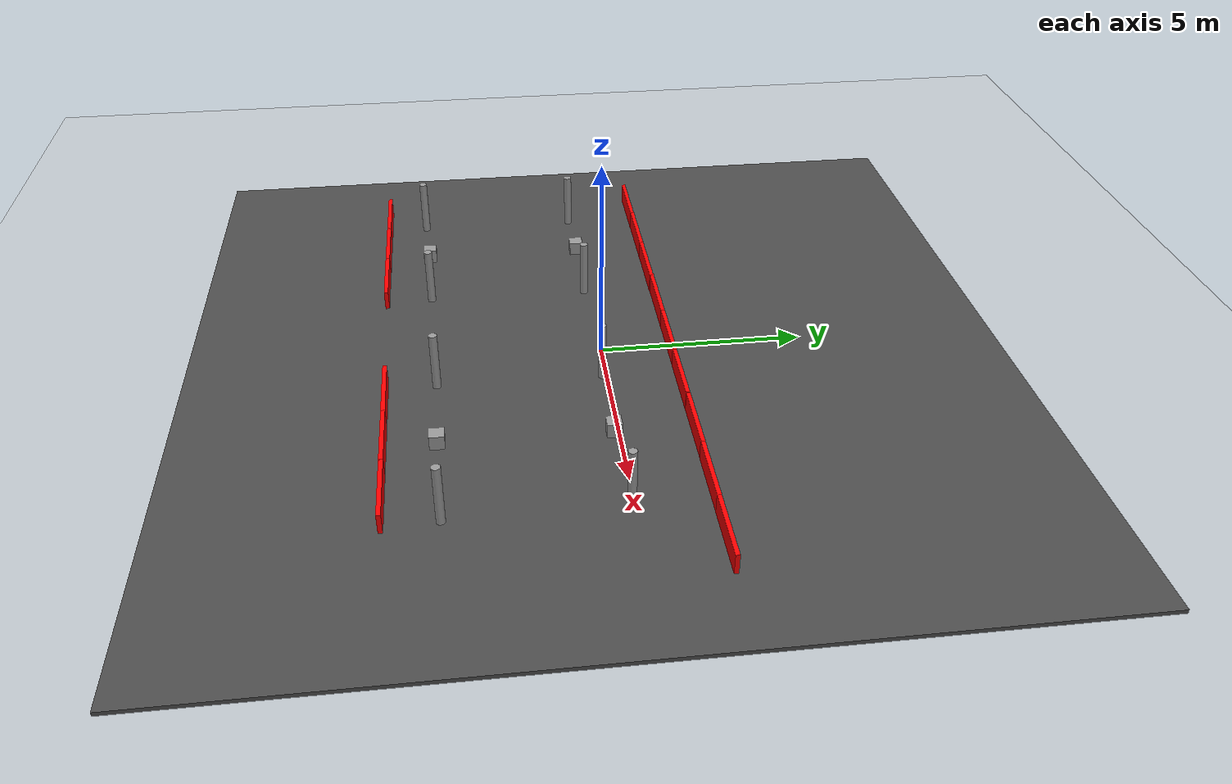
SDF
<sdf version="1.6">
 <world name="default">
  <light name="sun" type="directional">
   <pose>0 0 10 0 -0 0</pose>
   <diffuse>0.8 0.8 0.8 1</diffuse>
   <specular>0.2 0.2 0.2 1</specular>
   <attenuation>
    <range>1000</range>
    <constant>0.9</constant>
    <linear>0.01</linear>
    <quadratic>0.001</quadratic>
   </attenuation>
   <direction>-0.5 0.1 -0.9</direction>
  </light>
  <model name="ground_plane">
   <static>1</static>
   <link name="link">
    <collision name="collision">
     <geometry><plane><normal>0 0 1</normal><size>100 100</size></plane></geometry>
     <surface><friction><ode><mu>100</mu><mu2>50</mu2></ode></friction></surface>
    </collision>
    <visual name="visual">
     <cast_shadows>0</cast_shadows>
     <geometry><plane><normal>0 0 1</normal><size>100 100</size></plane></geometry>
     <material>
      <script><uri>file://media/materials/scripts/gazebo.material</uri><name>Gazebo/Grey</name></script>
     </material>
    </visual>
   </link>
  </model>
  <gravity>0 0 -9.8</gravity>
  <magnetic_field>6e-06 2.3e-05 -4.2e-05</magnetic_field>
  <atmosphere type="adiabatic"/>
  <physics name="default_physics" default="0" type="ode">
   <max_step_size>0.001</max_step_size>
   <real_time_factor>1</real_time_factor>
   <real_time_update_rate>1000</real_time_update_rate>
  </physics>
  <scene><ambient>0.4 0.4 0.4 1</ambient><background>0.7 0.7 0.7 1</background><shadows>1</shadows></scene>
  <audio><device>default</device></audio>
  <spherical_coordinates>
   <surface_model>EARTH_WGS84</surface_model>
   <latitude_deg>0</latitude_deg>
   <longitude_deg>0</longitude_deg>
   <elevation>0</elevation>
   <heading_deg>0</heading_deg>
  </spherical_coordinates>
  <model name="asphalt_plane">
   <static>1</static>
   <link name="link">
    <collision name="collision"><geometry><box><size>20 20 0.1</size></box></geometry></collision>
    <visual name="visual">
     <cast_shadows>0</cast_shadows>
     <geometry><box><size>20 20 0.1</size></box></geometry>
     <material>
      <script>
       <uri>model://asphalt_plane/materials/scripts</uri>
       <uri>model://asphalt_plane/materials/textures</uri>
       <name>vrc/asphalt</name>
      </script>
     </material>
    </visual>
    <velocity_decay><linear>0</linear><angular>0</angular></velocity_decay>
   </link>
   <pose>0.048269 -0.078348 0 0 -0 0</pose>
  </model>
  <gravity>0 0 -9.8</gravity>
  <magnetic_field>6e-06 2.3e-05 -4.2e-05</magnetic_field>
  <atmosphere type="adiabatic"/>
  <audio><device>default</device></audio>
  <spherical_coordinates>
   <surface_model>EARTH_WGS84</surface_model>
   <latitude_deg>0</latitude_deg>
   <longitude_deg>0</longitude_deg>
   <elevation>0</elevation>
   <heading_deg>0</heading_deg>
  </spherical_coordinates>
  <model name="circular_reflector">
   <static>1</static>
   <pose>5.90778 -4.03761 0 0 -0 0</pose>
   <link name="link">
    <inertial>
     <mass>1</mass>
     <inertia><ixx>0</ixx><ixy>0</ixy><ixz>0</ixz><iyy>0</iyy><iyz>0</iyz><izz>0</izz></inertia>
    </inertial>
    <collision name="collision">
     <laser_retro>1000</laser_retro>
     <geometry><cylinder><radius>0.05</radius><length>1</length></cylinder></geometry>
    </collision>
    <visual name="visual">
     <geometry><cylinder><radius>0.1</radius><length>3</length></cylinder></geometry>
     <material>
      <script><name>Gazebo/Grey</name><uri>file://media/materials/scripts/gazebo.material</uri></script>
      <ambient>1 1 1 1</ambient>
      <diffuse>1 1 1 1</diffuse>
      <specular>1 1 1 1</specular>
      <emissive>1 1 1 1</emissive>
     </material>
     <laser_retro>1000</laser_retro>
    </visual>
   </link>
  </model>
  <model name="circular_reflector_0">
   <static>1</static>
   <pose>5.87326 -0.076984 0 0 -0 0</pose>
   <link name="link">
    <inertial>
     <mass>1</mass>
     <inertia><ixx>0</ixx><ixy>0</ixy><ixz>0</ixz><iyy>0</iyy><iyz>0</iyz><izz>0</izz></inertia>
    </inertial>
    <collision name="collision">
     <laser_retro>1000</laser_retro>
     <geometry><cylinder><radius>0.05</radius><length>1</length></cylinder></geometry>
    </collision>
    <visual name="visual">
     <geometry><cylinder><radius>0.1</radius><length>3</length></cylinder></geometry>
     <material>
      <script><name>Gazebo/Grey</name><uri>file://media/materials/scripts/gazebo.material</uri></script>
      <ambient>1 1 1 1</ambient>
      <diffuse>1 1 1 1</diffuse>
      <specular>1 1 1 1</specular>
      <emissive>1 1 1 1</emissive>
     </material>
     <laser_retro>1000</laser_retro>
    </visual>
   </link>
  </model>
  <model name="circular_reflector_0_clone">
   <static>1</static>
   <pose>1.17274 -0.124319 0 0 -0 0</pose>
   <link name="link">
    <inertial>
     <mass>1</mass>
     <inertia><ixx>0</ixx><ixy>0</ixy><ixz>0</ixz><iyy>0</iyy><iyz>0</iyz><izz>0</izz></inertia>
    </inertial>
    <collision name="collision">
     <laser_retro>1000</laser_retro>
     <geometry><cylinder><radius>0.05</radius><length>1</length></cylinder></geometry>
    </collision>
    <visual name="visual">
     <geometry><cylinder><radius>0.1</radius><length>3</length></cylinder></geometry>
     <material>
      <script><name>Gazebo/Grey</name><uri>file://media/materials/scripts/gazebo.material</uri></script>
      <ambient>1 1 1 1</ambient>
      <diffuse>1 1 1 1</diffuse>
      <specular>1 1 1 1</specular>
      <emissive>1 1 1 1</emissive>
     </material>
     <laser_retro>1000</laser_retro>
    </visual>
   </link>
  </model>
  <model name="circular_reflector_0_clone_clone">
   <static>1</static>
   <pose>1.12879 -4.06871 0 0 -0 0</pose>
   <link name="link">
    <inertial>
     <mass>1</mass>
     <inertia><ixx>0</ixx><ixy>0</ixy><ixz>0</ixz><iyy>0</iyy><iyz>0</iyz><izz>0</izz></inertia>
    </inertial>
    <collision name="collision">
     <laser_retro>1000</laser_retro>
     <geometry><cylinder><radius>0.05</radius><length>1</length></cylinder></geometry>
    </collision>
    <visual name="visual">
     <geometry><cylinder><radius>0.1</radius><length>3</length></cylinder></geometry>
     <material>
      <script><name>Gazebo/Grey</name><uri>file://media/materials/scripts/gazebo.material</uri></script>
      <ambient>1 1 1 1</ambient>
      <diffuse>1 1 1 1</diffuse>
      <specular>1 1 1 1</specular>
      <emissive>1 1 1 1</emissive>
     </material>
     <laser_retro>1000</laser_retro>
    </visual>
   </link>
  </model>
  <model name="circular_reflector_0_clone_clone_0">
   <static>1</static>
   <pose>-2.75059 -0.124986 0 0 -0 0</pose>
   <link name="link">
    <inertial>
     <mass>1</mass>
     <inertia><ixx>0</ixx><ixy>0</ixy><ixz>0</ixz><iyy>0</iyy><iyz>0</iyz><izz>0</izz></inertia>
    </inertial>
    <collision name="collision">
     <laser_retro>1000</laser_retro>
     <geometry><cylinder><radius>0.05</radius><length>1</length></cylinder></geometry>
    </collision>
    <visual name="visual">
     <geometry><cylinder><radius>0.1</radius><length>3</length></cylinder></geometry>
     <material>
      <script><name>Gazebo/Grey</name><uri>file://media/materials/scripts/gazebo.material</uri></script>
      <ambient>1 1 1 1</ambient>
      <diffuse>1 1 1 1</diffuse>
      <specular>1 1 1 1</specular>
      <emissive>1 1 1 1</emissive>
     </material>
     <laser_retro>1000</laser_retro>
    </visual>
   </link>
  </model>
  <model name="circular_reflector_0_clone_clone_1">
   <static>1</static>
   <pose>-2.81115 -4.15818 0 0 -0 0</pose>
   <link name="link">
    <inertial>
     <mass>1</mass>
     <inertia><ixx>0</ixx><ixy>0</ixy><ixz>0</ixz><iyy>0</iyy><iyz>0</iyz><izz>0</izz></inertia>
    </inertial>
    <collision name="collision">
     <laser_retro>1000</laser_retro>
     <geometry><cylinder><radius>0.05</radius><length>1</length></cylinder></geometry>
    </collision>
    <visual name="visual">
     <geometry><cylinder><radius>0.1</radius><length>3</length></cylinder></geometry>
     <material>
      <script><name>Gazebo/Grey</name><uri>file://media/materials/scripts/gazebo.material</uri></script>
      <ambient>1 1 1 1</ambient>
      <diffuse>1 1 1 1</diffuse>
      <specular>1 1 1 1</specular>
      <emissive>1 1 1 1</emissive>
     </material>
     <laser_retro>1000</laser_retro>
    </visual>
   </link>
  </model>
  <model name="circular_reflector_0_clone_clone_2">
   <static>1</static>
   <pose>-6.70087 -0.164899 0 0 -0 0</pose>
   <link name="link">
    <inertial>
     <mass>1</mass>
     <inertia><ixx>0</ixx><ixy>0</ixy><ixz>0</ixz><iyy>0</iyy><iyz>0</iyz><izz>0</izz></inertia>
    </inertial>
    <collision name="collision">
     <laser_retro>1000</laser_retro>
     <geometry><cylinder><radius>0.05</radius><length>1</length></cylinder></geometry>
    </collision>
    <visual name="visual">
     <geometry><cylinder><radius>0.1</radius><length>3</length></cylinder></geometry>
     <material>
      <script><name>Gazebo/Grey</name><uri>file://media/materials/scripts/gazebo.material</uri></script>
      <ambient>1 1 1 1</ambient>
      <diffuse>1 1 1 1</diffuse>
      <specular>1 1 1 1</specular>
      <emissive>1 1 1 1</emissive>
     </material>
     <laser_retro>1000</laser_retro>
    </visual>
   </link>
  </model>
  <model name="circular_reflector_0_clone_clone_3">
   <static>1</static>
   <pose>-6.75978 -4.28292 0 0 -0 0</pose>
   <link name="link">
    <inertial>
     <mass>1</mass>
     <inertia><ixx>0</ixx><ixy>0</ixy><ixz>0</ixz><iyy>0</iyy><iyz>0</iyz><izz>0</izz></inertia>
    </inertial>
    <collision name="collision">
     <laser_retro>1000</laser_retro>
     <geometry><cylinder><radius>0.05</radius><length>1</length></cylinder></geometry>
    </collision>
    <visual name="visual">
     <geometry><cylinder><radius>0.1</radius><length>3</length></cylinder></geometry>
     <material>
      <script><name>Gazebo/Grey</name><uri>file://media/materials/scripts/gazebo.material</uri></script>
      <ambient>1 1 1 1</ambient>
      <diffuse>1 1 1 1</diffuse>
      <specular>1 1 1 1</specular>
      <emissive>1 1 1 1</emissive>
     </material>
     <laser_retro>1000</laser_retro>
    </visual>
   </link>
  </model>
  <model name="square_reflector">
   <static>1</static>
   <pose>3.36137 -4.08403 0.221803 0 -0 0</pose>
   <link name="link">
    <inertial>
     <mass>1</mass>
     <inertia><ixx>0</ixx><ixy>0</ixy><ixz>0</ixz><iyy>0</iyy><iyz>0</iyz><izz>0</izz></inertia>
    </inertial>
    <collision name="collision">
     <laser_retro>1000</laser_retro>
     <geometry><box><size>0.35 0.35 0.35</size></box></geometry>
    </collision>
    <visual name="visual">
     <geometry><box><size>0.35 0.35 0.35</size></box></geometry>
     <material>
      <script><name>Gazebo/Grey</name><uri>file://media/materials/scripts/gazebo.material</uri></script>
      <ambient>1 1 1 1</ambient>
      <diffuse>1 1 1 1</diffuse>
      <specular>1 1 1 1</specular>
      <emissive>1 1 1 1</emissive>
     </material>
     <laser_retro>1000</laser_retro>
    </visual>
   </link>
  </model>
  <model name="square_reflector_clone">
   <static>1</static>
   <pose>3.39259 -0.127452 0.221803 0 -0 0</pose>
   <link name="link">
    <inertial>
     <mass>1</mass>
     <inertia><ixx>0</ixx><ixy>0</ixy><ixz>0</ixz><iyy>0</iyy><iyz>0</iyz><izz>0</izz></inertia>
    </inertial>
    <collision name="collision">
     <laser_retro>1000</laser_retro>
     <geometry><box><size>0.35 0.35 0.35</size></box></geometry>
    </collision>
    <visual name="visual">
     <geometry><box><size>0.35 0.35 0.35</size></box></geometry>
     <material>
      <script><name>Gazebo/Grey</name><uri>file://media/materials/scripts/gazebo.material</uri></script>
      <ambient>1 1 1 1</ambient>
      <diffuse>1 1 1 1</diffuse>
      <specular>1 1 1 1</specular>
      <emissive>1 1 1 1</emissive>
     </material>
     <laser_retro>1000</laser_retro>
    </visual>
   </link>
  </model>
  <model name="square_reflector_clone_0">
   <static>1</static>
   <pose>-5.00249 -4.18152 0.221803 0 -0 0</pose>
   <link name="link">
    <inertial>
     <mass>1</mass>
     <inertia><ixx>0</ixx><ixy>0</ixy><ixz>0</ixz><iyy>0</iyy><iyz>0</iyz><izz>0</izz></inertia>
    </inertial>
    <collision name="collision">
     <laser_retro>1000</laser_retro>
     <geometry><box><size>0.35 0.35 0.35</size></box></geometry>
    </collision>
    <visual name="visual">
     <geometry><box><size>0.35 0.35 0.35</size></box></geometry>
     <material>
      <script><name>Gazebo/Grey</name><uri>file://media/materials/scripts/gazebo.material</uri></script>
      <ambient>1 1 1 1</ambient>
      <diffuse>1 1 1 1</diffuse>
      <specular>1 1 1 1</specular>
      <emissive>1 1 1 1</emissive>
     </material>
     <laser_retro>1000</laser_retro>
    </visual>
   </link>
  </model>
  <model name="square_reflector_clone_1">
   <static>1</static>
   <pose>-4.96846 -0.121047 0.221803 0 -0 0</pose>
   <link name="link">
    <inertial>
     <mass>1</mass>
     <inertia><ixx>0</ixx><ixy>0</ixy><ixz>0</ixz><iyy>0</iyy><iyz>0</iyz><izz>0</izz></inertia>
    </inertial>
    <collision name="collision">
     <laser_retro>1000</laser_retro>
     <geometry><box><size>0.35 0.35 0.35</size></box></geometry>
    </collision>
    <visual name="visual">
     <geometry><box><size>0.35 0.35 0.35</size></box></geometry>
     <material>
      <script><name>Gazebo/Grey</name><uri>file://media/materials/scripts/gazebo.material</uri></script>
      <ambient>1 1 1 1</ambient>
      <diffuse>1 1 1 1</diffuse>
      <specular>1 1 1 1</specular>
      <emissive>1 1 1 1</emissive>
     </material>
     <laser_retro>1000</laser_retro>
    </visual>
   </link>
  </model>
  <model name="barrier_w_reflector">
   <static>1</static>
   <pose>-3.49412 1.65825 0.292208 0 -0 0</pose>
   <link name="link">
    <inertial>
     <mass>1</mass>
     <inertia><ixx>0</ixx><ixy>0</ixy><ixz>0</ixz><iyy>0</iyy><iyz>0</iyz><izz>0</izz></inertia>
    </inertial>
    <collision name="collision">
     <laser_retro>1000</laser_retro>
     <geometry><box><size>1.8 0.1 0.5</size></box></geometry>
    </collision>
    <visual name="visual">
     <geometry><box><size>1.8 0.1 0.5</size></box></geometry>
     <material>
      <ambient>1 0 0 1</ambient>
      <diffuse>1 0 0 1</diffuse>
      <specular>1 0 0 1</specular>
      <emissive>1 0 0 1</emissive>
     </material>
     <laser_retro>1000</laser_retro>
    </visual>
   </link>
  </model>
  <model name="barrier_w_reflector_clone">
   <static>1</static>
   <pose>-1.72087 1.66831 0.292208 0 -0 0</pose>
   <link name="link">
    <inertial>
     <mass>1</mass>
     <inertia><ixx>0</ixx><ixy>0</ixy><ixz>0</ixz><iyy>0</iyy><iyz>0</iyz><izz>0</izz></inertia>
    </inertial>
    <collision name="collision">
     <laser_retro>1000</laser_retro>
     <geometry><box><size>1.8 0.1 0.5</size></box></geometry>
    </collision>
    <visual name="visual">
     <geometry><box><size>1.8 0.1 0.5</size></box></geometry>
     <material>
      <ambient>1 0 0 1</ambient>
      <diffuse>1 0 0 1</diffuse>
      <specular>1 0 0 1</specular>
      <emissive>1 0 0 1</emissive>
     </material>
     <laser_retro>1000</laser_retro>
    </visual>
   </link>
  </model>
  <model name="barrier_w_reflector_clone_0">
   <static>1</static>
   <pose>-5.27371 1.65668 0.292208 0 -0 0</pose>
   <link name="link">
    <inertial>
     <mass>1</mass>
     <inertia><ixx>0</ixx><ixy>0</ixy><ixz>0</ixz><iyy>0</iyy><iyz>0</iyz><izz>0</izz></inertia>
    </inertial>
    <collision name="collision">
     <laser_retro>1000</laser_retro>
     <geometry><box><size>1.8 0.1 0.5</size></box></geometry>
    </collision>
    <visual name="visual">
     <geometry><box><size>1.8 0.1 0.5</size></box></geometry>
     <material>
      <ambient>1 0 0 1</ambient>
      <diffuse>1 0 0 1</diffuse>
      <specular>1 0 0 1</specular>
      <emissive>1 0 0 1</emissive>
     </material>
     <laser_retro>1000</laser_retro>
    </visual>
   </link>
  </model>
  <model name="barrier_w_reflector_clone_1">
   <static>1</static>
   <pose>-7.0687 1.65153 0.292208 0 -0 0</pose>
   <link name="link">
    <inertial>
     <mass>1</mass>
     <inertia><ixx>0</ixx><ixy>0</ixy><ixz>0</ixz><iyy>0</iyy><iyz>0</iyz><izz>0</izz></inertia>
    </inertial>
    <collision name="collision">
     <laser_retro>1000</laser_retro>
     <geometry><box><size>1.8 0.1 0.5</size></box></geometry>
    </collision>
    <visual name="visual">
     <geometry><box><size>1.8 0.1 0.5</size></box></geometry>
     <material>
      <ambient>1 0 0 1</ambient>
      <diffuse>1 0 0 1</diffuse>
      <specular>1 0 0 1</specular>
      <emissive>1 0 0 1</emissive>
     </material>
     <laser_retro>1000</laser_retro>
    </visual>
   </link>
  </model>
  <model name="barrier_w_reflector_clone_2">
   <static>1</static>
   <pose>0.066053 1.6712 0.292208 0 -0 0</pose>
   <link name="link">
    <inertial>
     <mass>1</mass>
     <inertia><ixx>0</ixx><ixy>0</ixy><ixz>0</ixz><iyy>0</iyy><iyz>0</iyz><izz>0</izz></inertia>
    </inertial>
    <collision name="collision">
     <laser_retro>1000</laser_retro>
     <geometry><box><size>1.8 0.1 0.5</size></box></geometry>
    </collision>
    <visual name="visual">
     <geometry><box><size>1.8 0.1 0.5</size></box></geometry>
     <material>
      <ambient>1 0 0 1</ambient>
      <diffuse>1 0 0 1</diffuse>
      <specular>1 0 0 1</specular>
      <emissive>1 0 0 1</emissive>
     </material>
     <laser_retro>1000</laser_retro>
    </visual>
   </link>
  </model>
  <model name="barrier_w_reflector_clone_3">
   <static>1</static>
   <pose>1.83013 1.6659 0.292208 0 -0 0</pose>
   <link name="link">
    <inertial>
     <mass>1</mass>
     <inertia><ixx>0</ixx><ixy>0</ixy><ixz>0</ixz><iyy>0</iyy><iyz>0</iyz><izz>0</izz></inertia>
    </inertial>
    <collision name="collision">
     <laser_retro>1000</laser_retro>
     <geometry><box><size>1.8 0.1 0.5</size></box></geometry>
    </collision>
    <visual name="visual">
     <geometry><box><size>1.8 0.1 0.5</size></box></geometry>
     <material>
      <ambient>1 0 0 1</ambient>
      <diffuse>1 0 0 1</diffuse>
      <specular>1 0 0 1</specular>
      <emissive>1 0 0 1</emissive>
     </material>
     <laser_retro>1000</laser_retro>
    </visual>
   </link>
  </model>
  <model name="barrier_w_reflector_clone_4">
   <static>1</static>
   <pose>3.64991 1.66856 0.292208 0 -0 0</pose>
   <link name="link">
    <inertial>
     <mass>1</mass>
     <inertia><ixx>0</ixx><ixy>0</ixy><ixz>0</ixz><iyy>0</iyy><iyz>0</iyz><izz>0</izz></inertia>
    </inertial>
    <collision name="collision">
     <laser_retro>1000</laser_retro>
     <geometry><box><size>1.8 0.1 0.5</size></box></geometry>
    </collision>
    <visual name="visual">
     <geometry><box><size>1.8 0.1 0.5</size></box></geometry>
     <material>
      <ambient>1 0 0 1</ambient>
      <diffuse>1 0 0 1</diffuse>
      <specular>1 0 0 1</specular>
      <emissive>1 0 0 1</emissive>
     </material>
     <laser_retro>1000</laser_retro>
    </visual>
   </link>
  </model>
  <model name="barrier_w_reflector_clone_5">
   <static>1</static>
   <pose>5.41384 1.66375 0.292208 0 -0 0</pose>
   <link name="link">
    <inertial>
     <mass>1</mass>
     <inertia><ixx>0</ixx><ixy>0</ixy><ixz>0</ixz><iyy>0</iyy><iyz>0</iyz><izz>0</izz></inertia>
    </inertial>
    <collision name="collision">
     <laser_retro>1000</laser_retro>
     <geometry><box><size>1.8 0.1 0.5</size></box></geometry>
    </collision>
    <visual name="visual">
     <geometry><box><size>1.8 0.1 0.5</size></box></geometry>
     <material>
      <ambient>1 0 0 1</ambient>
      <diffuse>1 0 0 1</diffuse>
      <specular>1 0 0 1</specular>
      <emissive>1 0 0 1</emissive>
     </material>
     <laser_retro>1000</laser_retro>
    </visual>
   </link>
  </model>
  <model name="barrier_w_reflector_clone_6">
   <static>1</static>
   <pose>7.19583 1.66054 0.292208 0 -0 0</pose>
   <link name="link">
    <inertial>
     <mass>1</mass>
     <inertia><ixx>0</ixx><ixy>0</ixy><ixz>0</ixz><iyy>0</iyy><iyz>0</iyz><izz>0</izz></inertia>
    </inertial>
    <collision name="collision">
     <laser_retro>1000</laser_retro>
     <geometry><box><size>1.8 0.1 0.5</size></box></geometry>
    </collision>
    <visual name="visual">
     <geometry><box><size>1.8 0.1 0.5</size></box></geometry>
     <material>
      <ambient>1 0 0 1</ambient>
      <diffuse>1 0 0 1</diffuse>
      <specular>1 0 0 1</specular>
      <emissive>1 0 0 1</emissive>
     </material>
     <laser_retro>1000</laser_retro>
    </visual>
   </link>
  </model>
  <model name="barrier_w_reflector_clone_7">
   <static>1</static>
   <pose>-3.42278 -5.3127 0.292208 0 -0 0</pose>
   <link name="link">
    <inertial>
     <mass>1</mass>
     <inertia><ixx>0</ixx><ixy>0</ixy><ixz>0</ixz><iyy>0</iyy><iyz>0</iyz><izz>0</izz></inertia>
    </inertial>
    <collision name="collision">
     <laser_retro>1000</laser_retro>
     <geometry><box><size>1.8 0.1 0.5</size></box></geometry>
    </collision>
    <visual name="visual">
     <geometry><box><size>1.8 0.1 0.5</size></box></geometry>
     <material>
      <ambient>1 0 0 1</ambient>
      <diffuse>1 0 0 1</diffuse>
      <specular>1 0 0 1</specular>
      <emissive>1 0 0 1</emissive>
     </material>
     <laser_retro>1000</laser_retro>
    </visual>
   </link>
  </model>
  <model name="barrier_w_reflector_clone_8">
   <static>1</static>
   <pose>-5.1807 -5.30943 0.292208 0 -0 0</pose>
   <link name="link">
    <inertial>
     <mass>1</mass>
     <inertia><ixx>0</ixx><ixy>0</ixy><ixz>0</ixz><iyy>0</iyy><iyz>0</iyz><izz>0</izz></inertia>
    </inertial>
    <collision name="collision">
     <laser_retro>1000</laser_retro>
     <geometry><box><size>1.8 0.1 0.5</size></box></geometry>
    </collision>
    <visual name="visual">
     <geometry><box><size>1.8 0.1 0.5</size></box></geometry>
     <material>
      <ambient>1 0 0 1</ambient>
      <diffuse>1 0 0 1</diffuse>
      <specular>1 0 0 1</specular>
      <emissive>1 0 0 1</emissive>
     </material>
     <laser_retro>1000</laser_retro>
    </visual>
   </link>
  </model>
  <model name="barrier_w_reflector_clone_9">
   <static>1</static>
   <pose>-6.92869 -5.30525 0.292208 0 -0 0</pose>
   <link name="link">
    <inertial>
     <mass>1</mass>
     <inertia><ixx>0</ixx><ixy>0</ixy><ixz>0</ixz><iyy>0</iyy><iyz>0</iyz><izz>0</izz></inertia>
    </inertial>
    <collision name="collision">
     <laser_retro>1000</laser_retro>
     <geometry><box><size>1.8 0.1 0.5</size></box></geometry>
    </collision>
    <visual name="visual">
     <geometry><box><size>1.8 0.1 0.5</size></box></geometry>
     <material>
      <ambient>1 0 0 1</ambient>
      <diffuse>1 0 0 1</diffuse>
      <specular>1 0 0 1</specular>
      <emissive>1 0 0 1</emissive>
     </material>
     <laser_retro>1000</laser_retro>
    </visual>
   </link>
  </model>
  <model name="barrier_w_reflector_clone_10">
   <static>1</static>
   <pose>1.73278 -5.26079 0.292208 0 -0 0</pose>
   <link name="link">
    <inertial>
     <mass>1</mass>
     <inertia><ixx>0</ixx><ixy>0</ixy><ixz>0</ixz><iyy>0</iyy><iyz>0</iyz><izz>0</izz></inertia>
    </inertial>
    <collision name="collision">
     <laser_retro>1000</laser_retro>
     <geometry><box><size>1.8 0.1 0.5</size></box></geometry>
    </collision>
    <visual name="visual">
     <geometry><box><size>1.8 0.1 0.5</size></box></geometry>
     <material>
      <ambient>1 0 0 1</ambient>
      <diffuse>1 0 0 1</diffuse>
      <specular>1 0 0 1</specular>
      <emissive>1 0 0 1</emissive>
     </material>
     <laser_retro>1000</laser_retro>
    </visual>
   </link>
  </model>
  <model name="barrier_w_reflector_clone_11">
   <static>1</static>
   <pose>3.4913 -5.25878 0.292208 0 -0 0</pose>
   <link name="link">
    <inertial>
     <mass>1</mass>
     <inertia><ixx>0</ixx><ixy>0</ixy><ixz>0</ixz><iyy>0</iyy><iyz>0</iyz><izz>0</izz></inertia>
    </inertial>
    <collision name="collision">
     <laser_retro>1000</laser_retro>
     <geometry><box><size>1.8 0.1 0.5</size></box></geometry>
    </collision>
    <visual name="visual">
     <geometry><box><size>1.8 0.1 0.5</size></box></geometry>
     <material>
      <ambient>1 0 0 1</ambient>
      <diffuse>1 0 0 1</diffuse>
      <specular>1 0 0 1</specular>
      <emissive>1 0 0 1</emissive>
     </material>
     <laser_retro>1000</laser_retro>
    </visual>
   </link>
  </model>
  <model name="barrier_w_reflector_clone_12">
   <static>1</static>
   <pose>5.2178 -5.2582 0.292208 0 -0 0</pose>
   <link name="link">
    <inertial>
     <mass>1</mass>
     <inertia><ixx>0</ixx><ixy>0</ixy><ixz>0</ixz><iyy>0</iyy><iyz>0</iyz><izz>0</izz></inertia>
    </inertial>
    <collision name="collision">
     <laser_retro>1000</laser_retro>
     <geometry><box><size>1.8 0.1 0.5</size></box></geometry>
    </collision>
    <visual name="visual">
     <geometry><box><size>1.8 0.1 0.5</size></box></geometry>
     <material>
      <ambient>1 0 0 1</ambient>
      <diffuse>1 0 0 1</diffuse>
      <specular>1 0 0 1</specular>
      <emissive>1 0 0 1</emissive>
     </material>
     <laser_retro>1000</laser_retro>
    </visual>
   </link>
  </model>
 </world>
</sdf>
